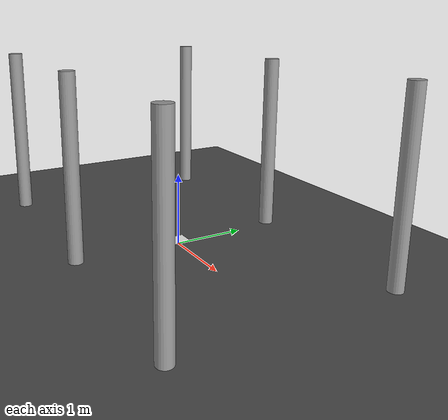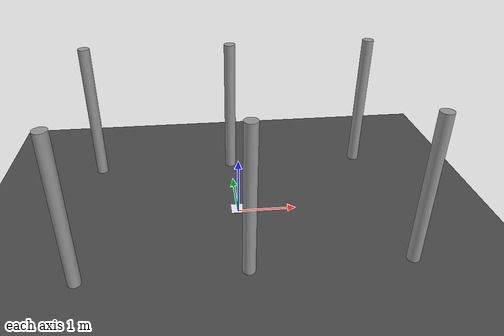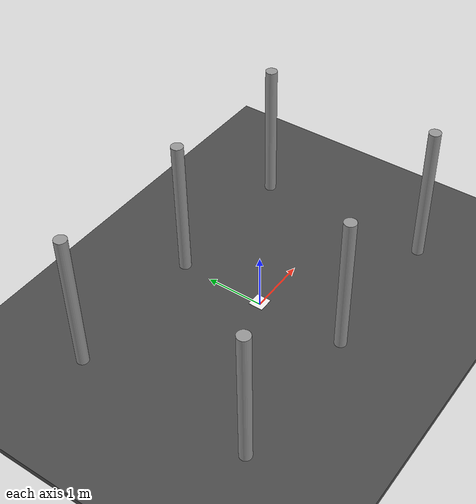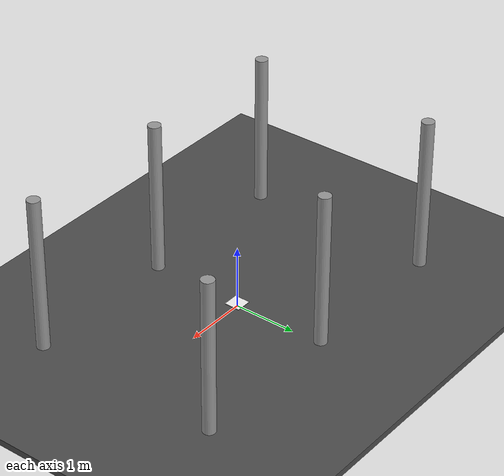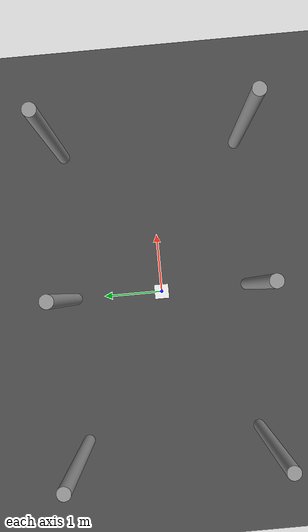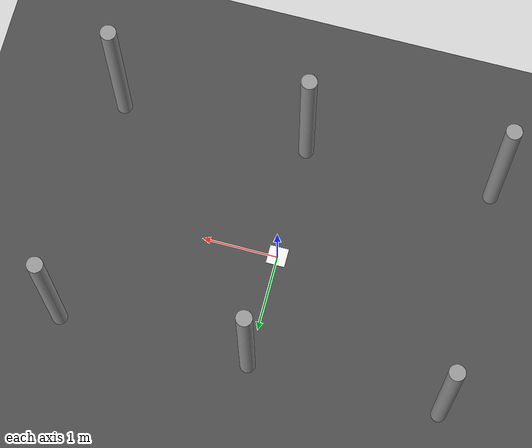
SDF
<sdf version="1.7">
 <world name="default">
  <light name="sun" type="directional">
   <pose>0 0 10 0 -0 0</pose>
   <diffuse>0.8 0.8 0.8 1</diffuse>
   <specular>0.2 0.2 0.2 1</specular>
   <attenuation>
    <range>1000</range>
    <constant>0.9</constant>
    <linear>0.01</linear>
    <quadratic>0.001</quadratic>
   </attenuation>
   <direction>-0.5 0.1 -0.9</direction>
   <spot><inner_angle>0</inner_angle><outer_angle>0</outer_angle><falloff>0</falloff></spot>
  </light>
  <model name="ground_plane">
   <static>1</static>
   <link name="link">
    <collision name="collision">
     <geometry><plane><normal>0 0 1</normal><size>100 100</size></plane></geometry>
     <surface>
      <contact><collide_bitmask>65535</collide_bitmask></contact>
      <friction><ode><mu>100</mu><mu2>50</mu2></ode></friction>
     </surface>
    </collision>
    <visual name="visual">
     <cast_shadows>0</cast_shadows>
     <geometry><plane><normal>0 0 1</normal><size>100 100</size></plane></geometry>
     <material>
      <script><uri>file://media/materials/scripts/gazebo.material</uri><name>Gazebo/Grey</name></script>
     </material>
    </visual>
   </link>
  </model>
  <gravity>0 0 -9.8</gravity>
  <magnetic_field>6e-06 2.3e-05 -4.2e-05</magnetic_field>
  <atmosphere type="adiabatic"/>
  <physics type="ode">
   <ode>
    <solver>
     <type>quick</type>
     <iters>10</iters>
     <sor>1.3</sor>
     <use_dynamic_moi_rescaling>0</use_dynamic_moi_rescaling>
    </solver>
    <constraints>
     <cfm>0</cfm>
     <erp>0.2</erp>
     <contact_max_correcting_vel>100</contact_max_correcting_vel>
     <contact_surface_layer>0.001</contact_surface_layer>
    </constraints>
   </ode>
   <max_step_size>0.004</max_step_size>
   <real_time_factor>1</real_time_factor>
   <real_time_update_rate>250</real_time_update_rate>
   <gravity>0 0 -9.8066</gravity>
   <magnetic_field>6.0e-6 2.3e-5 -4.2e-5</magnetic_field>
  </physics>
  <scene><ambient>0.4 0.4 0.4 1</ambient><background>0.7 0.7 0.7 1</background><shadows>1</shadows></scene>
  <audio><device>default</device></audio>
  <spherical_coordinates>
   <surface_model>EARTH_WGS84</surface_model>
   <latitude_deg>0</latitude_deg>
   <longitude_deg>0</longitude_deg>
   <elevation>0</elevation>
   <heading_deg>0</heading_deg>
  </spherical_coordinates>
  <model name="asphalt_plane">
   <static>1</static>
   <link name="link">
    <collision name="collision"><geometry><box><size>20 20 0.1</size></box></geometry></collision>
    <visual name="visual">
     <cast_shadows>0</cast_shadows>
     <geometry><box><size>20 20 0.1</size></box></geometry>
     <material>
      <script>
       <uri>model://asphalt_plane/materials/scripts</uri>
       <uri>model://asphalt_plane/materials/textures</uri>
       <name>vrc/asphalt</name>
      </script>
     </material>
    </visual>
   </link>
   <pose>0.01435 0.004374 0 0 -0 0</pose>
  </model>
  <light name="user_point_light_0" type="point">
   <pose>0.015232 -0.007963 1 0 -0 0</pose>
   <diffuse>0.5 0.5 0.5 1</diffuse>
   <specular>0.1 0.1 0.1 1</specular>
   <attenuation>
    <range>20</range>
    <constant>0.5</constant>
    <linear>0.01</linear>
    <quadratic>0.001</quadratic>
   </attenuation>
   <cast_shadows>0</cast_shadows>
   <direction>0 0 -1</direction>
   <spot><inner_angle>0</inner_angle><outer_angle>0</outer_angle><falloff>0</falloff></spot>
  </light>
  <model name="aruco_marker">
   <link name="link_0">
    <inertial>
     <mass>1</mass>
     <inertia>
      <ixx>0.166667</ixx>
      <ixy>0</ixy>
      <ixz>0</ixz>
      <iyy>0.166667</iyy>
      <iyz>0</iyz>
      <izz>0.166667</izz>
     </inertia>
    </inertial>
    <visual name="visual">
     <geometry><box><size>0.25 0.25 0.01</size></box></geometry>
     <material>
      <script><name>aruco-marker</name><uri>__default__</uri></script>
      <shader type="pixel"><normal_map>__default__</normal_map></shader>
      <ambient>0.965 0.961 0.957 1</ambient>
      <diffuse>0.965 0.961 0.957 1</diffuse>
      <specular>0.01 0.01 0.01 1</specular>
      <emissive>0 0 0 1</emissive>
     </material>
    </visual>
    <collision name="collision_0">
     <geometry><box><size>0.25 0.25 0.01</size></box></geometry>
     <surface>
      <friction>
       <ode><mu>1</mu><mu2>1</mu2><fdir1>0 0 0</fdir1><slip1>0</slip1><slip2>0</slip2></ode>
       <torsional>
        <coefficient>1</coefficient>
        <patch_radius>0</patch_radius>
        <surface_radius>0</surface_radius>
        <use_patch_radius>1</use_patch_radius>
        <ode><slip>0</slip></ode>
       </torsional>
      </friction>
      <bounce><restitution_coefficient>0</restitution_coefficient><threshold>1e+06</threshold></bounce>
      <contact>
       <collide_without_contact>0</collide_without_contact>
       <collide_without_contact_bitmask>1</collide_without_contact_bitmask>
       <collide_bitmask>1</collide_bitmask>
       <ode>
        <soft_cfm>0</soft_cfm>
        <soft_erp>0.2</soft_erp>
        <kp>1e+13</kp>
        <kd>1</kd>
        <max_vel>0.01</max_vel>
        <min_depth>0</min_depth>
       </ode>
       <bullet>
        <split_impulse>1</split_impulse>
        <split_impulse_penetration_threshold>-0.01</split_impulse_penetration_threshold>
        <soft_cfm>0</soft_cfm>
        <soft_erp>0.2</soft_erp>
        <kp>1e+13</kp>
        <kd>1</kd>
       </bullet>
      </contact>
     </surface>
    </collision>
   </link>
   <static>0</static>
   <pose>-0 0 0.054998 -6e-06 -6e-06 -2e-05</pose>
   <plugin name="planar_move" filename="libgazebo_ros_planar_move.so">
    <ros><namespace>/aruco_marker</namespace></ros>
    <update_rate>100</update_rate>
    <publish_rate>10</publish_rate>
    <publish_odom>true</publish_odom>
    <publish_odom_tf>true</publish_odom_tf>
    <odometry_frame>map</odometry_frame>
    <robot_base_frame>aruco_marker</robot_base_frame>
   </plugin>
  </model>
  <model name="Pillar1">
   <link name="link_1">
    <inertial>
     <mass>1</mass>
     <inertia><ixx>0.145833</ixx><ixy>0</ixy><ixz>0</ixz><iyy>0.145833</iyy><iyz>0</iyz><izz>0.125</izz></inertia>
    </inertial>
    <visual name="visual">
     <geometry><cylinder><radius>0.1</radius><length>2.5</length></cylinder></geometry>
     <material>
      <lighting>1</lighting>
      <script><uri>file://media/materials/scripts/gazebo.material</uri><name>Gazebo/Grey</name></script>
      <shader type="pixel"><normal_map>__default__</normal_map></shader>
      <ambient>0.3 0.3 0.3 1</ambient>
      <diffuse>0.7 0.7 0.7 1</diffuse>
      <specular>0.01 0.01 0.01 1</specular>
      <emissive>0 0 0 1</emissive>
     </material>
    </visual>
   </link>
   <static>1</static>
   <pose>2.5 1.5 1.25 0 -0 0</pose>
  </model>
  <model name="Pillar1_0">
   <link name="link_1">
    <inertial>
     <mass>1</mass>
     <inertia><ixx>0.145833</ixx><ixy>0</ixy><ixz>0</ixz><iyy>0.145833</iyy><iyz>0</iyz><izz>0.125</izz></inertia>
    </inertial>
    <visual name="visual">
     <geometry><cylinder><radius>0.1</radius><length>2.5</length></cylinder></geometry>
     <material>
      <lighting>1</lighting>
      <script><uri>file://media/materials/scripts/gazebo.material</uri><name>Gazebo/Grey</name></script>
      <shader type="pixel"><normal_map>__default__</normal_map></shader>
      <ambient>0.3 0.3 0.3 1</ambient>
      <diffuse>0.7 0.7 0.7 1</diffuse>
      <specular>0.01 0.01 0.01 1</specular>
      <emissive>0 0 0 1</emissive>
     </material>
    </visual>
   </link>
   <static>1</static>
   <pose>2.5 -1.5 1.25 0 -0 0</pose>
  </model>
  <model name="Pillar1_1">
   <link name="link_1">
    <inertial>
     <mass>1</mass>
     <inertia><ixx>0.145833</ixx><ixy>0</ixy><ixz>0</ixz><iyy>0.145833</iyy><iyz>0</iyz><izz>0.125</izz></inertia>
    </inertial>
    <visual name="visual">
     <geometry><cylinder><radius>0.1</radius><length>2.5</length></cylinder></geometry>
     <material>
      <lighting>1</lighting>
      <script><uri>file://media/materials/scripts/gazebo.material</uri><name>Gazebo/Grey</name></script>
      <shader type="pixel"><normal_map>__default__</normal_map></shader>
      <ambient>0.3 0.3 0.3 1</ambient>
      <diffuse>0.7 0.7 0.7 1</diffuse>
      <specular>0.01 0.01 0.01 1</specular>
      <emissive>0 0 0 1</emissive>
     </material>
    </visual>
   </link>
   <static>1</static>
   <pose>0 -1.5 1.25 0 -0 0</pose>
  </model>
  <model name="Pillar1_2">
   <link name="link_1">
    <inertial>
     <mass>1</mass>
     <inertia><ixx>0.145833</ixx><ixy>0</ixy><ixz>0</ixz><iyy>0.145833</iyy><iyz>0</iyz><izz>0.125</izz></inertia>
    </inertial>
    <visual name="visual">
     <geometry><cylinder><radius>0.1</radius><length>2.5</length></cylinder></geometry>
     <material>
      <lighting>1</lighting>
      <script><uri>file://media/materials/scripts/gazebo.material</uri><name>Gazebo/Grey</name></script>
      <shader type="pixel"><normal_map>__default__</normal_map></shader>
      <ambient>0.3 0.3 0.3 1</ambient>
      <diffuse>0.7 0.7 0.7 1</diffuse>
      <specular>0.01 0.01 0.01 1</specular>
      <emissive>0 0 0 1</emissive>
     </material>
    </visual>
   </link>
   <static>1</static>
   <pose>-2.5 -1.5 1.25 0 -0 0</pose>
  </model>
  <model name="Pillar1_3">
   <link name="link_1">
    <inertial>
     <mass>1</mass>
     <inertia><ixx>0.145833</ixx><ixy>0</ixy><ixz>0</ixz><iyy>0.145833</iyy><iyz>0</iyz><izz>0.125</izz></inertia>
    </inertial>
    <visual name="visual">
     <geometry><cylinder><radius>0.1</radius><length>2.5</length></cylinder></geometry>
     <material>
      <lighting>1</lighting>
      <script><uri>file://media/materials/scripts/gazebo.material</uri><name>Gazebo/Grey</name></script>
      <shader type="pixel"><normal_map>__default__</normal_map></shader>
      <ambient>0.3 0.3 0.3 1</ambient>
      <diffuse>0.7 0.7 0.7 1</diffuse>
      <specular>0.01 0.01 0.01 1</specular>
      <emissive>0 0 0 1</emissive>
     </material>
    </visual>
   </link>
   <static>1</static>
   <pose>0 1.5 1.25 0 -0 0</pose>
  </model>
  <model name="Pillar1_4">
   <link name="link_1">
    <inertial>
     <mass>1</mass>
     <inertia><ixx>0.145833</ixx><ixy>0</ixy><ixz>0</ixz><iyy>0.145833</iyy><iyz>0</iyz><izz>0.125</izz></inertia>
    </inertial>
    <visual name="visual">
     <geometry><cylinder><radius>0.1</radius><length>2.5</length></cylinder></geometry>
     <material>
      <lighting>1</lighting>
      <script><uri>file://media/materials/scripts/gazebo.material</uri><name>Gazebo/Grey</name></script>
      <shader type="pixel"><normal_map>__default__</normal_map></shader>
      <ambient>0.3 0.3 0.3 1</ambient>
      <diffuse>0.7 0.7 0.7 1</diffuse>
      <specular>0.01 0.01 0.01 1</specular>
      <emissive>0 0 0 1</emissive>
     </material>
    </visual>
   </link>
   <static>1</static>
   <pose>-2.5 1.5 1.25 0 -0 0</pose>
  </model>
 </world>
</sdf>
